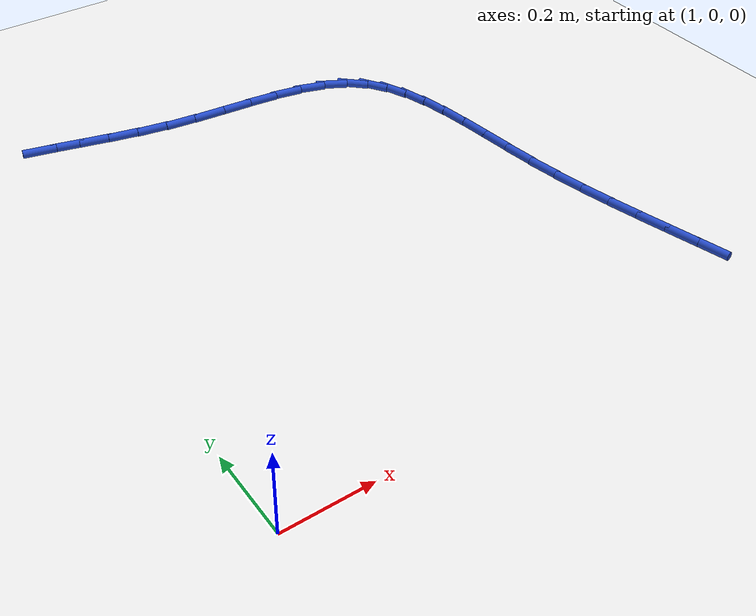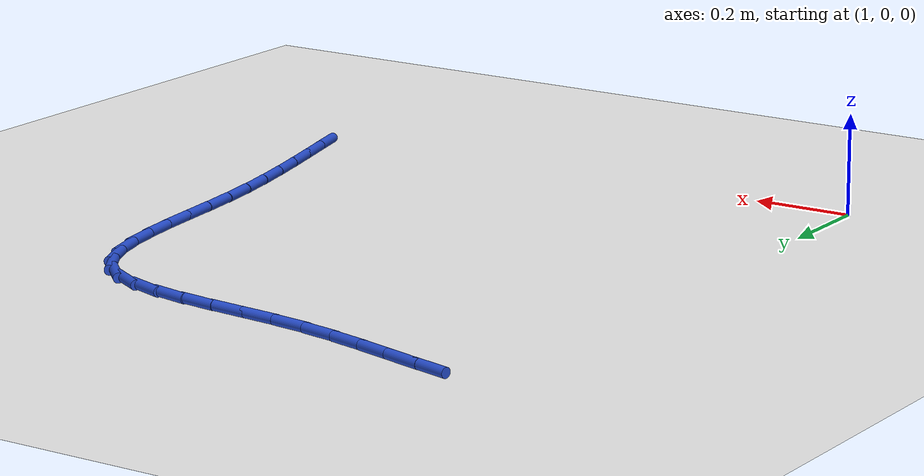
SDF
<sdf version="1.6">
 <world name="default">
  <model name="ground_plane">
   <static>1</static>
   <link name="link">
    <collision name="collision">
     <geometry><plane><normal>0 0 1</normal><size>100 100</size></plane></geometry>
     <surface><friction><ode><mu>100</mu><mu2>50</mu2></ode></friction></surface>
    </collision>
    <visual name="visual">
     <cast_shadows>0</cast_shadows>
     <geometry><plane><normal>0 0 1</normal><size>100 100</size></plane></geometry>
     <material>
      <script><uri>file://media/materials/scripts/gazebo.material</uri><name>Gazebo/WhiteGlow</name></script>
     </material>
    </visual>
   </link>
  </model>
  <model name="line">
   <link name="link_28">
    <pose>1.1046175374710203 1.2741600353883875 0.01 0 1.57 -0.235662815378991</pose>
    <collision name="collision">
     <geometry><cylinder><radius>0.01</radius><length>0.08</length></cylinder></geometry>
    </collision>
    <visual name="visual">
     <material>
      <script><name>Gazebo/Blue</name><uri>file://media/materials/scripts/gazebo.material</uri></script>
     </material>
     <geometry><cylinder><radius>0.01</radius><length>0.08</length></cylinder></geometry>
    </visual>
   </link>
   <link name="link_29">
    <pose>1.1692479446069344 1.2586406830815837 0.01 0 1.57 -0.24917847106390598</pose>
    <collision name="collision">
     <geometry><cylinder><radius>0.01</radius><length>0.08</length></cylinder></geometry>
    </collision>
    <visual name="visual">
     <material>
      <script><name>Gazebo/Blue</name><uri>file://media/materials/scripts/gazebo.material</uri></script>
     </material>
     <geometry><cylinder><radius>0.01</radius><length>0.08</length></cylinder></geometry>
    </visual>
   </link>
   <link name="link_30">
    <pose>1.2355594626895863 1.2417665891910137 0.01 0 1.57 -0.24078212774834287</pose>
    <collision name="collision">
     <geometry><cylinder><radius>0.01</radius><length>0.08</length></cylinder></geometry>
    </collision>
    <visual name="visual">
     <material>
      <script><name>Gazebo/Blue</name><uri>file://media/materials/scripts/gazebo.material</uri></script>
     </material>
     <geometry><cylinder><radius>0.01</radius><length>0.08</length></cylinder></geometry>
    </visual>
   </link>
   <link name="link_31">
    <pose>1.3036154925907975 1.2250557149761114 0.01 0 1.57 -0.21189854298175204</pose>
    <collision name="collision">
     <geometry><cylinder><radius>0.01</radius><length>0.08</length></cylinder></geometry>
    </collision>
    <visual name="visual">
     <material>
      <script><name>Gazebo/Blue</name><uri>file://media/materials/scripts/gazebo.material</uri></script>
     </material>
     <geometry><cylinder><radius>0.01</radius><length>0.08</length></cylinder></geometry>
    </visual>
   </link>
   <link name="link_32">
    <pose>1.3734794351823885 1.2100260216963097 0.01 0 1.57 -0.16345607996727723</pose>
    <collision name="collision">
     <geometry><cylinder><radius>0.01</radius><length>0.08</length></cylinder></geometry>
    </collision>
    <visual name="visual">
     <material>
      <script><name>Gazebo/Blue</name><uri>file://media/materials/scripts/gazebo.material</uri></script>
     </material>
     <geometry><cylinder><radius>0.01</radius><length>0.08</length></cylinder></geometry>
    </visual>
   </link>
   <link name="link_33">
    <pose>1.44521444180008 1.198194943410403 0.01 0 1.57 -0.10761795835097138</pose>
    <collision name="collision">
     <geometry><cylinder><radius>0.01</radius><length>0.08</length></cylinder></geometry>
    </collision>
    <visual name="visual">
     <material>
      <script><name>Gazebo/Blue</name><uri>file://media/materials/scripts/gazebo.material</uri></script>
     </material>
     <geometry><cylinder><radius>0.01</radius><length>0.08</length></cylinder></geometry>
    </visual>
   </link>
   <link name="link_34">
    <pose>1.5185036803406897 1.190277114453894 0.01 0 1.57 -0.07765379768603888</pose>
    <collision name="collision">
     <geometry><cylinder><radius>0.01</radius><length>0.08</length></cylinder></geometry>
    </collision>
    <visual name="visual">
     <material>
      <script><name>Gazebo/Blue</name><uri>file://media/materials/scripts/gazebo.material</uri></script>
     </material>
     <geometry><cylinder><radius>0.01</radius><length>0.08</length></cylinder></geometry>
    </visual>
   </link>
   <link name="link_35">
    <pose>1.59188493912511 1.1845672994719922 0.01 0 1.57 -0.07868772977416755</pose>
    <collision name="collision">
     <geometry><cylinder><radius>0.01</radius><length>0.08</length></cylinder></geometry>
    </collision>
    <visual name="visual">
     <material>
      <script><name>Gazebo/Blue</name><uri>file://media/materials/scripts/gazebo.material</uri></script>
     </material>
     <geometry><cylinder><radius>0.01</radius><length>0.08</length></cylinder></geometry>
    </visual>
   </link>
   <link name="link_36">
    <pose>1.6636810581462367 1.1789061368492064 0.01 0 1.57 -0.11291959548280237</pose>
    <collision name="collision">
     <geometry><cylinder><radius>0.01</radius><length>0.08</length></cylinder></geometry>
    </collision>
    <visual name="visual">
     <material>
      <script><name>Gazebo/Blue</name><uri>file://media/materials/scripts/gazebo.material</uri></script>
     </material>
     <geometry><cylinder><radius>0.01</radius><length>0.08</length></cylinder></geometry>
    </visual>
   </link>
   <link name="link_37">
    <pose>1.7322148773969648 1.171134264970044 0.01 0 1.57 -0.18713984428271108</pose>
    <collision name="collision">
     <geometry><cylinder><radius>0.01</radius><length>0.08</length></cylinder></geometry>
    </collision>
    <visual name="visual">
     <material>
      <script><name>Gazebo/Blue</name><uri>file://media/materials/scripts/gazebo.material</uri></script>
     </material>
     <geometry><cylinder><radius>0.01</radius><length>0.08</length></cylinder></geometry>
    </visual>
   </link>
   <link name="link_38">
    <pose>1.7958092368701903 1.1590923222190137 0.01 0 1.57 -0.3134953245826815</pose>
    <collision name="collision">
     <geometry><cylinder><radius>0.01</radius><length>0.08</length></cylinder></geometry>
    </collision>
    <visual name="visual">
     <material>
      <script><name>Gazebo/Blue</name><uri>file://media/materials/scripts/gazebo.material</uri></script>
     </material>
     <geometry><cylinder><radius>0.01</radius><length>0.08</length></cylinder></geometry>
    </visual>
   </link>
   <link name="link_39">
    <pose>1.8527869765588088 1.1406209469806226 0.01 0 1.57 -0.5073107691200806</pose>
    <collision name="collision">
     <geometry><cylinder><radius>0.01</radius><length>0.08</length></cylinder></geometry>
    </collision>
    <visual name="visual">
     <material>
      <script><name>Gazebo/Blue</name><uri>file://media/materials/scripts/gazebo.material</uri></script>
     </material>
     <geometry><cylinder><radius>0.01</radius><length>0.08</length></cylinder></geometry>
    </visual>
   </link>
   <link name="link_40">
    <pose>1.9014709364557154 1.1135607776393794 0.01 0 1.57 -0.7643186544951085</pose>
    <collision name="collision">
     <geometry><cylinder><radius>0.01</radius><length>0.08</length></cylinder></geometry>
    </collision>
    <visual name="visual">
     <material>
      <script><name>Gazebo/Blue</name><uri>file://media/materials/scripts/gazebo.material</uri></script>
     </material>
     <geometry><cylinder><radius>0.01</radius><length>0.08</length></cylinder></geometry>
    </visual>
   </link>
   <link name="link_41">
    <pose>1.9405172938702864 1.0761268264009036 0.01 0 1.57 -1.003328281384246</pose>
    <collision name="collision">
     <geometry><cylinder><radius>0.01</radius><length>0.08</length></cylinder></geometry>
    </collision>
    <visual name="visual">
     <material>
      <script><name>Gazebo/Blue</name><uri>file://media/materials/scripts/gazebo.material</uri></script>
     </material>
     <geometry><cylinder><radius>0.01</radius><length>0.08</length></cylinder></geometry>
    </visual>
   </link>
   <link name="link_42">
    <pose>1.970648566524364 1.0288548290072606 0.01 0 1.57 -1.1832668582427992</pose>
    <collision name="collision">
     <geometry><cylinder><radius>0.01</radius><length>0.08</length></cylinder></geometry>
    </collision>
    <visual name="visual">
     <material>
      <script><name>Gazebo/Blue</name><uri>file://media/materials/scripts/gazebo.material</uri></script>
     </material>
     <geometry><cylinder><radius>0.01</radius><length>0.08</length></cylinder></geometry>
    </visual>
   </link>
   <link name="link_43">
    <pose>1.9933780067903528 0.9731686016462994 0.01 0 1.57 -1.308270851041177</pose>
    <collision name="collision">
     <geometry><cylinder><radius>0.01</radius><length>0.08</length></cylinder></geometry>
    </collision>
    <visual name="visual">
     <material>
      <script><name>Gazebo/Blue</name><uri>file://media/materials/scripts/gazebo.material</uri></script>
     </material>
     <geometry><cylinder><radius>0.01</radius><length>0.08</length></cylinder></geometry>
    </visual>
   </link>
   <link name="link_44">
    <pose>2.0102204654023113 0.9104937556387003 0.01 0 1.57 -1.390042960559881</pose>
    <collision name="collision">
     <geometry><cylinder><radius>0.01</radius><length>0.08</length></cylinder></geometry>
    </collision>
    <visual name="visual">
     <material>
      <script><name>Gazebo/Blue</name><uri>file://media/materials/scripts/gazebo.material</uri></script>
     </material>
     <geometry><cylinder><radius>0.01</radius><length>0.08</length></cylinder></geometry>
    </visual>
   </link>
   <link name="link_45">
    <pose>2.0226907930943026 0.8422559023051449 0.01 0 1.57 -1.438746929278427</pose>
    <collision name="collision">
     <geometry><cylinder><radius>0.01</radius><length>0.08</length></cylinder></geometry>
    </collision>
    <visual name="visual">
     <material>
      <script><name>Gazebo/Blue</name><uri>file://media/materials/scripts/gazebo.material</uri></script>
     </material>
     <geometry><cylinder><radius>0.01</radius><length>0.08</length></cylinder></geometry>
    </visual>
   </link>
   <link name="link_46">
    <pose>2.0323038406003864 0.7698806529663134 0.01 0 1.57 -1.4610914740165923</pose>
    <collision name="collision">
     <geometry><cylinder><radius>0.01</radius><length>0.08</length></cylinder></geometry>
    </collision>
    <visual name="visual">
     <material>
      <script><name>Gazebo/Blue</name><uri>file://media/materials/scripts/gazebo.material</uri></script>
     </material>
     <geometry><cylinder><radius>0.01</radius><length>0.08</length></cylinder></geometry>
    </visual>
   </link>
   <link name="link_47">
    <pose>2.0405744586546213 0.6947936189428862 0.01 0 1.57 -1.4606936504081305</pose>
    <collision name="collision">
     <geometry><cylinder><radius>0.01</radius><length>0.08</length></cylinder></geometry>
    </collision>
    <visual name="visual">
     <material>
      <script><name>Gazebo/Blue</name><uri>file://media/materials/scripts/gazebo.material</uri></script>
     </material>
     <geometry><cylinder><radius>0.01</radius><length>0.08</length></cylinder></geometry>
    </visual>
   </link>
   <link name="link_48">
    <pose>2.0490174979910702 0.6184204115555443 0.01 0 1.57 -1.4387128064316472</pose>
    <collision name="collision">
     <geometry><cylinder><radius>0.01</radius><length>0.08</length></cylinder></geometry>
    </collision>
    <visual name="visual">
     <material>
      <script><name>Gazebo/Blue</name><uri>file://media/materials/scripts/gazebo.material</uri></script>
     </material>
     <geometry><cylinder><radius>0.01</radius><length>0.08</length></cylinder></geometry>
    </visual>
   </link>
   <link name="link_49">
    <pose>2.0591458660922655 0.5421853185801224 0.01 0 1.57 -1.4024120844900545</pose>
    <collision name="collision">
     <geometry><cylinder><radius>0.01</radius><length>0.08</length></cylinder></geometry>
    </collision>
    <visual name="visual">
     <material>
      <script><name>Gazebo/Blue</name><uri>file://media/materials/scripts/gazebo.material</uri></script>
     </material>
     <geometry><cylinder><radius>0.01</radius><length>0.08</length></cylinder></geometry>
    </visual>
   </link>
   <link name="link_50">
    <pose>2.0719054232415917 0.4671264130449682 0.01 0 1.57 -1.370376464496852</pose>
    <collision name="collision">
     <geometry><cylinder><radius>0.01</radius><length>0.08</length></cylinder></geometry>
    </collision>
    <visual name="visual">
     <material>
      <script><name>Gazebo/Blue</name><uri>file://media/materials/scripts/gazebo.material</uri></script>
     </material>
     <geometry><cylinder><radius>0.01</radius><length>0.08</length></cylinder></geometry>
    </visual>
   </link>
   <link name="link_51">
    <pose>2.0868905965832183 0.3933613094885706 0.01 0 1.57 -1.3455668840250896</pose>
    <collision name="collision">
     <geometry><cylinder><radius>0.01</radius><length>0.08</length></cylinder></geometry>
    </collision>
    <visual name="visual">
     <material>
      <script><name>Gazebo/Blue</name><uri>file://media/materials/scripts/gazebo.material</uri></script>
     </material>
     <geometry><cylinder><radius>0.01</radius><length>0.08</length></cylinder></geometry>
    </visual>
   </link>
   <link name="link_52">
    <pose>2.1034987906489464 0.32087343073028257 0.01 0 1.57 -1.3281735780001234</pose>
    <collision name="collision">
     <geometry><cylinder><radius>0.01</radius><length>0.08</length></cylinder></geometry>
    </collision>
    <visual name="visual">
     <material>
      <script><name>Gazebo/Blue</name><uri>file://media/materials/scripts/gazebo.material</uri></script>
     </material>
     <geometry><cylinder><radius>0.01</radius><length>0.08</length></cylinder></geometry>
    </visual>
   </link>
   <link name="link_53">
    <pose>2.1211274099705757 0.24964619958945725 0.01 0 1.57 -1.3184258845912487</pose>
    <collision name="collision">
     <geometry><cylinder><radius>0.01</radius><length>0.08</length></cylinder></geometry>
    </collision>
    <visual name="visual">
     <material>
      <script><name>Gazebo/Blue</name><uri>file://media/materials/scripts/gazebo.material</uri></script>
     </material>
     <geometry><cylinder><radius>0.01</radius><length>0.08</length></cylinder></geometry>
    </visual>
   </link>
   <link name="link_54">
    <pose>2.1391738590799085 0.17966303888544757 0.01 0 1.57 -1.316629769151927</pose>
    <collision name="collision">
     <geometry><cylinder><radius>0.01</radius><length>0.08</length></cylinder></geometry>
    </collision>
    <visual name="visual">
     <material>
      <script><name>Gazebo/Blue</name><uri>file://media/materials/scripts/gazebo.material</uri></script>
     </material>
     <geometry><cylinder><radius>0.01</radius><length>0.08</length></cylinder></geometry>
    </visual>
   </link>
   <link name="link_55">
    <pose>2.157035542508746 0.11090737143760658 0.01 0 1.57 -1.3231978993210098</pose>
    <collision name="collision">
     <geometry><cylinder><radius>0.01</radius><length>0.08</length></cylinder></geometry>
    </collision>
    <visual name="visual">
     <material>
      <script><name>Gazebo/Blue</name><uri>file://media/materials/scripts/gazebo.material</uri></script>
     </material>
     <geometry><cylinder><radius>0.01</radius><length>0.08</length></cylinder></geometry>
    </visual>
   </link>
  </model>
 </world>
</sdf>
